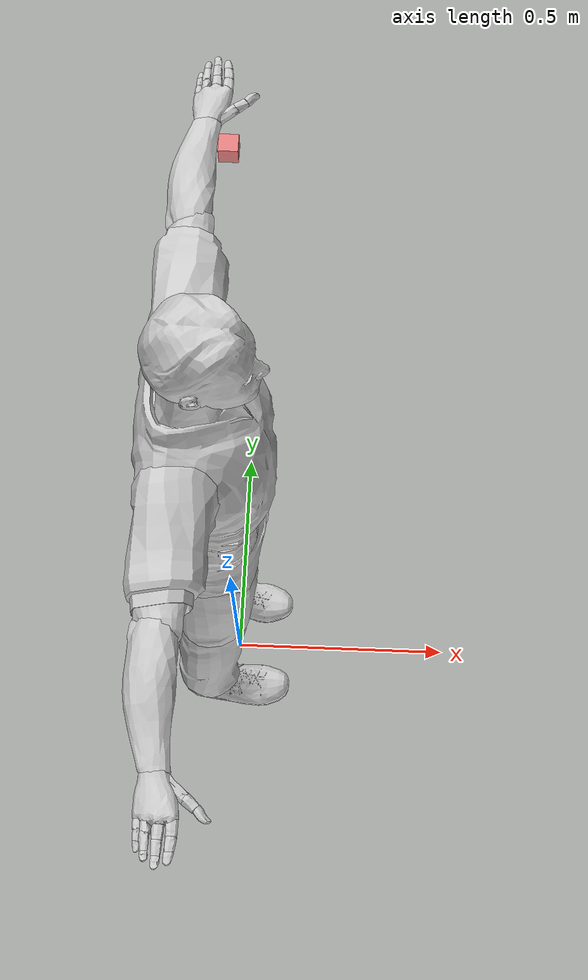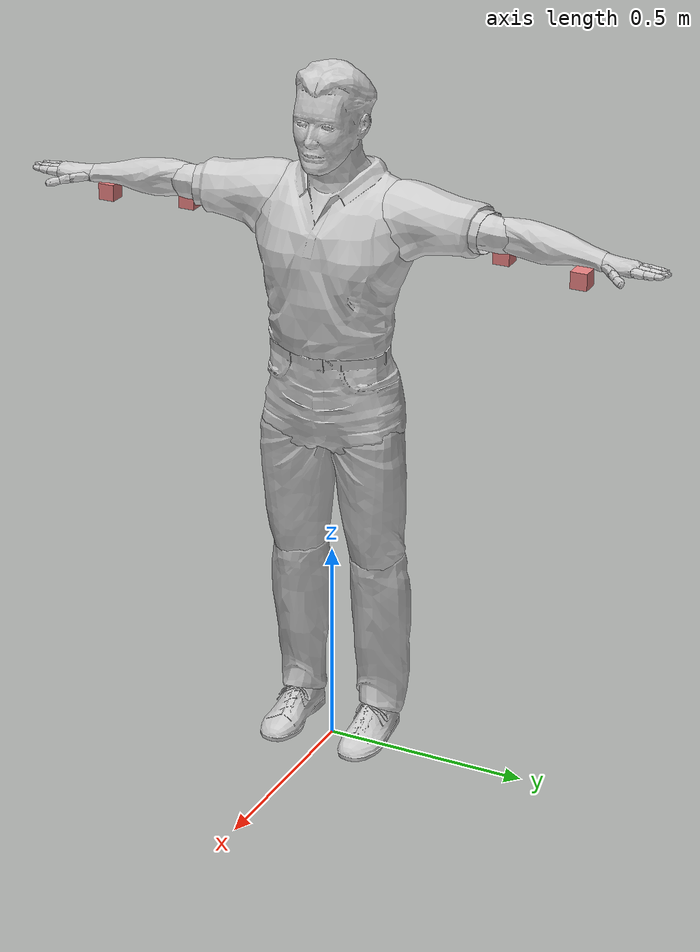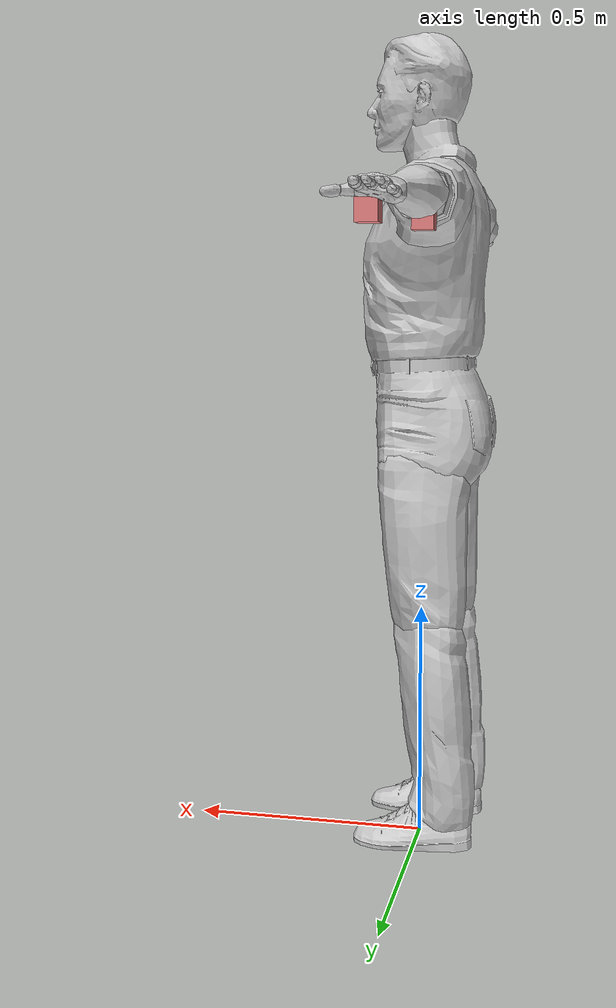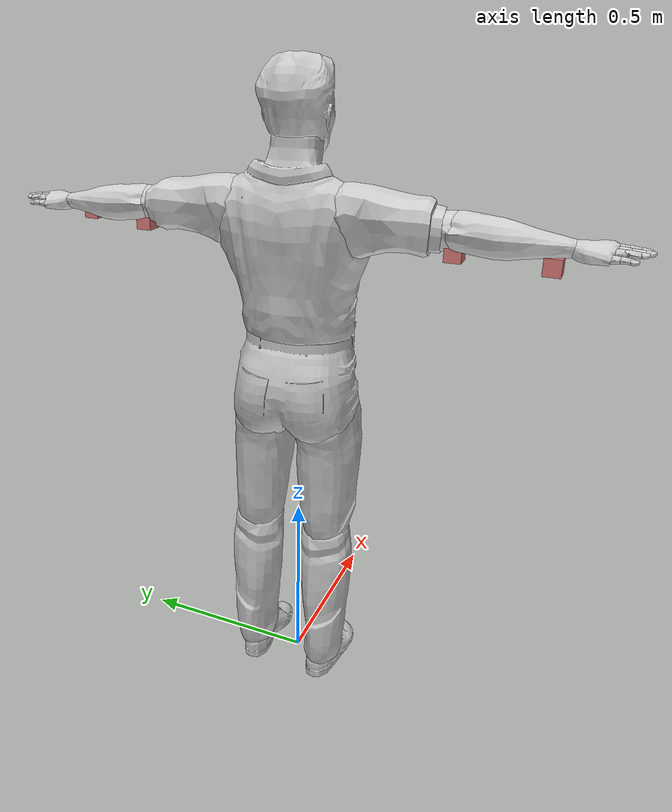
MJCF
<mujoco model="HUMAN">
    <compiler angle="radian" meshdir="../meshes/stl/" />
    <size njmax="500" nconmax="100" />
    <option timestep="0.001" iterations="50"  tolerance="1e-10" solver="Newton" jacobian="dense" cone="pyramidal" />

    <default>
        <default class="collision">
            <geom condim="3" material="matgeom" type="mesh" group="0" />
        </default>
        <default class="visual">
            <geom condim="3" material="matgeom" type="mesh" group="1" conaffinity="0" contype="0" />
        </default>
    </default>

    <asset>
        <texture type='skybox' builtin='gradient' width='128' height='128' rgb1='0.4 0.6 0.8' rgb2='0 0 0'/>
        <mesh name="HipsLinkFull" file="HipsLinkFull.stl" />
        <mesh name="TorsoLinkFull" file="TorsoLinkFull.stl" />
        <mesh name="HeadLinkFull" file="HeadLinkFull.stl" />
        <mesh name="LArmLinkFull" file="LArmLinkFull.stl" />
        <mesh name="LElbowLink" file="LElbowLink.stl" />
        <mesh name="LForearmLink" file="LForearmLink.stl" />
        <mesh name="LWrist" file="LWrist.stl" />
        <mesh name="RArmLinkFull" file="RArmLinkFull.stl" />
        <mesh name="RElbowLink" file="RElbowLink.stl" />
        <mesh name="RForearmLink" file="RForearmLink.stl" />
        <mesh name="RWrist" file="RWrist.stl" />
        <mesh name="LLegLink" file="LLegLink.stl" />
        <mesh name="LShinLink" file="LShinLink.stl" />
        <mesh name="LAnkleLinkFull" file="LAnkleLinkFull.stl" />
        <mesh name="RLegLink" file="RLegLink.stl" />
        <mesh name="RShinLink" file="RShinLink.stl" />
        <mesh name="RAnkleLinkFull" file="RAnkleLinkFull.stl" />
        <mesh name="LThumb0thPhalange" file="LThumb0thPhalange.stl" />
        <mesh name="LThumb1stPhalange" file="LThumb1stPhalange.stl" />
        <mesh name="LThumb2ndPhalange" file="LThumb2ndPhalange.stl" />
        <mesh name="LIndex1stPhalange" file="LIndex1stPhalange.stl" />
        <mesh name="LIndex2ndPhalange" file="LIndex2ndPhalange.stl" />
        <mesh name="LIndex3rdPhalange" file="LIndex3rdPhalange.stl" />
        <mesh name="LMiddle1stPhalange" file="LMiddle1stPhalange.stl" />
        <mesh name="LMiddle2ndPhalange" file="LMiddle2ndPhalange.stl" />
        <mesh name="LMiddle3rdPhalange" file="LMiddle3rdPhalange.stl" />
        <mesh name="LRing1stPhalange" file="LRing1stPhalange.stl" />
        <mesh name="LRing2ndPhalange" file="LRing2ndPhalange.stl" />
        <mesh name="LRing3rdPhalange" file="LRing3rdPhalange.stl" />
        <mesh name="LBaby1stPhalange" file="LBaby1stPhalange.stl" />
        <mesh name="LBaby2ndPhalange" file="LBaby2ndPhalange.stl" />
        <mesh name="LBaby3rdPhalange" file="LBaby3rdPhalange.stl" />
        <mesh name="RThumb0thPhalange" file="RThumb0thPhalange.stl" />
        <mesh name="RThumb1stPhalange" file="RThumb1stPhalange.stl" />
        <mesh name="RThumb2ndPhalange" file="RThumb2ndPhalange.stl" />
        <mesh name="RIndex1stPhalange" file="RIndex1stPhalange.stl" />
        <mesh name="RIndex2ndPhalange" file="RIndex2ndPhalange.stl" />
        <mesh name="RIndex3rdPhalange" file="RIndex3rdPhalange.stl" />
        <mesh name="RMiddle1stPhalange" file="RMiddle1stPhalange.stl" />
        <mesh name="RMiddle2ndPhalange" file="RMiddle2ndPhalange.stl" />
        <mesh name="RMiddle3rdPhalange" file="RMiddle3rdPhalange.stl" />
        <mesh name="RRing1stPhalange" file="RRing1stPhalange.stl" />
        <mesh name="RRing2ndPhalange" file="RRing2ndPhalange.stl" />
        <mesh name="RRing3rdPhalange" file="RRing3rdPhalange.stl" />
        <mesh name="RBaby1stPhalange" file="RBaby1stPhalange.stl" />
        <mesh name="RBaby2ndPhalange" file="RBaby2ndPhalange.stl" />
        <mesh name="RBaby3rdPhalange" file="RBaby3rdPhalange.stl" />
        <texture name="texgeom" type="cube" builtin="flat" mark="cross" width="127" height="1278" rgb1="1 1 1" rgb2="1 1 1" markrgb="1 1 1" random="0.01" />
        <material name="matgeom" texture="texgeom" texuniform="true" rgba="0.8 0.8 0.8 1" />
    </asset>

    <contact>
        <exclude body1="base_link" body2="TorsoLink" />
        <exclude body1="base_link" body2="LLegLink" />
        <exclude body1="base_link" body2="RLegLink" />
        <exclude body1="base_link" body2="LForearmLink" />
        <exclude body1="base_link" body2="RForearmLink" />
        <exclude body1="base_link" body2="LHandLink" />
        <exclude body1="base_link" body2="RHandLink" />

        <exclude body1="TorsoLink" body2="HeadLink" />

        <exclude body1="TorsoLink" body2="LArmLink" />
        <exclude body1="TorsoLink" body2="LElbowLink" />
        <exclude body1="TorsoLink" body2="LHandLink" />
        <exclude body1="TorsoLink" body2="LHandThumb0Link" />
        <exclude body1="TorsoLink" body2="LHandThumb1Link" />
        <exclude body1="TorsoLink" body2="LHandThumb2Link" />
        <exclude body1="TorsoLink" body2="LHandIndex1Link" />
        <exclude body1="TorsoLink" body2="LHandIndex2Link" />
        <exclude body1="TorsoLink" body2="LHandIndex3Link" />
        <exclude body1="TorsoLink" body2="LHandMiddle1Link" />
        <exclude body1="TorsoLink" body2="LHandMiddle2Link" />
        <exclude body1="TorsoLink" body2="LHandMiddle3Link" />
        <exclude body1="TorsoLink" body2="LHandRing1Link" />
        <exclude body1="TorsoLink" body2="LHandRing2Link" />
        <exclude body1="TorsoLink" body2="LHandRing3Link" />
        <exclude body1="TorsoLink" body2="LHandBaby1Link" />
        <exclude body1="TorsoLink" body2="LHandBaby2Link" />
        <exclude body1="TorsoLink" body2="LHandBaby3Link" />

        <exclude body1="TorsoLink" body2="RArmLink" />
        <exclude body1="TorsoLink" body2="RElbowLink" />
        <exclude body1="TorsoLink" body2="RHandLink" />
        <exclude body1="TorsoLink" body2="RHandThumb0Link" />
        <exclude body1="TorsoLink" body2="RHandThumb1Link" />
        <exclude body1="TorsoLink" body2="RHandThumb2Link" />
        <exclude body1="TorsoLink" body2="RHandIndex1Link" />
        <exclude body1="TorsoLink" body2="RHandIndex2Link" />
        <exclude body1="TorsoLink" body2="RHandIndex3Link" />
        <exclude body1="TorsoLink" body2="RHandMiddle1Link" />
        <exclude body1="TorsoLink" body2="RHandMiddle2Link" />
        <exclude body1="TorsoLink" body2="RHandMiddle3Link" />
        <exclude body1="TorsoLink" body2="RHandRing1Link" />
        <exclude body1="TorsoLink" body2="RHandRing2Link" />
        <exclude body1="TorsoLink" body2="RHandRing3Link" />
        <exclude body1="TorsoLink" body2="RHandBaby1Link" />
        <exclude body1="TorsoLink" body2="RHandBaby2Link" />
        <exclude body1="TorsoLink" body2="RHandBaby3Link" />

        <exclude body1="LLegLink" body2="LForearmLink" />
        <exclude body1="LLegLink" body2="LHandLink" />
        <exclude body1="LLegLink" body2="LHandThumb0Link" />
        <exclude body1="LLegLink" body2="LHandThumb1Link" />
        <exclude body1="LLegLink" body2="LHandThumb2Link" />
        <exclude body1="LLegLink" body2="LHandIndex1Link" />
        <exclude body1="LLegLink" body2="LHandIndex2Link" />
        <exclude body1="LLegLink" body2="LHandIndex3Link" />
        <exclude body1="LLegLink" body2="LHandMiddle1Link" />
        <exclude body1="LLegLink" body2="LHandMiddle2Link" />
        <exclude body1="LLegLink" body2="LHandMiddle3Link" />
        <exclude body1="LLegLink" body2="LHandRing1Link" />
        <exclude body1="LLegLink" body2="LHandRing2Link" />
        <exclude body1="LLegLink" body2="LHandRing3Link" />
        <exclude body1="LLegLink" body2="LHandBaby1Link" />
        <exclude body1="LLegLink" body2="LHandBaby2Link" />
        <exclude body1="LLegLink" body2="LHandBaby3Link" />

        <exclude body1="RLegLink" body2="RForearmLink" />
        <exclude body1="RLegLink" body2="RHandLink" />
        <exclude body1="RLegLink" body2="RHandThumb0Link" />
        <exclude body1="RLegLink" body2="RHandThumb1Link" />
        <exclude body1="RLegLink" body2="RHandThumb2Link" />
        <exclude body1="RLegLink" body2="RHandIndex1Link" />
        <exclude body1="RLegLink" body2="RHandIndex2Link" />
        <exclude body1="RLegLink" body2="RHandIndex3Link" />
        <exclude body1="RLegLink" body2="RHandMiddle1Link" />
        <exclude body1="RLegLink" body2="RHandMiddle2Link" />
        <exclude body1="RLegLink" body2="RHandMiddle3Link" />
        <exclude body1="RLegLink" body2="RHandRing1Link" />
        <exclude body1="RLegLink" body2="RHandRing2Link" />
        <exclude body1="RLegLink" body2="RHandRing3Link" />
        <exclude body1="RLegLink" body2="RHandBaby1Link" />
        <exclude body1="RLegLink" body2="RHandBaby2Link" />
        <exclude body1="RLegLink" body2="RHandBaby3Link" />

        <exclude body1="LArmLink" body2="LForearmLink" />
        <exclude body1="LForearmLink" body2="LHandLink" />
        <exclude body1="RArmLink" body2="RForearmLink" />
        <exclude body1="RForearmLink" body2="RHandLink" />
        <exclude body1="LShinLink" body2="LAnkleLink" />
        <exclude body1="RShinLink" body2="RAnkleLink" />
    </contact>

    <worldbody>
        <light directional="false" diffuse="0.2 0.2 0.2" specular="0 0 0" pos="0 0 2" dir="0 0 -1" castshadow="false" />

        <!-- ====== mocap body parts ====== -->

        <!-- pelvis (base_link here) -->
        <body name="mocap_Pelvis" mocap="true" pos="0 0 1" >
            <geom type="box" group="1" size="0.02 0.02 0.02" contype="0" conaffinity="0" rgba=".9 .5 .5 1"/>
        </body>

        <!-- torso -->
        <body name="mocap_T8" mocap="true" pos="0 0 1" >
            <geom type="box" group="1" size="0.02 0.02 0.02" contype="0" conaffinity="0" rgba=".9 .5 .5 1"/>
        </body>

        <!-- head -->
        <body name="mocap_Head" mocap="true" pos="-0.025 0 1.46" >
            <geom type="box" group="1" size="0.02 0.02 0.02" contype="0" conaffinity="0" rgba=".9 .5 .5 1"/>
        </body>

        <!-- right shoulder -->
        <body name="mocap_Right Upper Arm" mocap="true" pos="-0.05 -0.15 1.3" >
            <geom type="box" group="1" size="0.02 0.02 0.02" contype="0" conaffinity="0" rgba=".9 .5 .5 1"/>
        </body>

        <!-- right forearm -->
        <body name="mocap_Right Forearm" mocap="true" pos="-0.06 -0.4 1.3" >
            <geom type="box" group="1" size="0.02 0.02 0.02" contype="0" conaffinity="0" rgba=".9 .5 .5 1"/>
        </body>

        <!-- right hand -->
        <body name="mocap_Right Hand" mocap="true" pos="-0.05 -0.61 1.29" >
            <geom type="box" group="1" size="0.02 0.02 0.02" contype="0" conaffinity="0" rgba=".9 .5 .5 1"/>
        </body>

        <!-- left shoulder -->
        <body name="mocap_Left Upper Arm" mocap="true" pos="-0.05 0.15 1.3" >
            <geom type="box" group="1" size="0.02 0.02 0.02" contype="0" conaffinity="0" rgba=".9 .5 .5 1"/>
        </body>

        <!-- left forearm -->
        <body name="mocap_Left Forearm" mocap="true" pos="-0.06 0.4 1.3" >
            <geom type="box" group="1" size="0.02 0.02 0.02" contype="0" conaffinity="0" rgba=".9 .5 .5 1"/>
        </body>

        <!-- left hand -->
        <body name="mocap_Left Hand" mocap="true" pos="-0.0 0.61 1.3" >
            <geom type="box" group="1" size="0.02 0.02 0.02" contype="0" conaffinity="0" rgba=".9 .5 .5 1"/>
        </body>

        <!-- right upper leg -->
        <body name="mocap_Right Upper Leg" mocap="true" pos="0 -0.1 0.9" >
            <geom type="box" group="1" size="0.02 0.02 0.02" contype="0" conaffinity="0" rgba=".9 .5 .5 1"/>
        </body>

        <!-- right lower leg -->
        <body name="mocap_Right Lower Leg" mocap="true" pos="-0.025 -0.1 0.55" >
            <geom type="box" group="1" size="0.02 0.02 0.02" contype="0" conaffinity="0" rgba=".9 .5 .5 1"/>
        </body>

        <!-- right foot -->
        <body name="mocap_Right Foot" mocap="true" pos="-0.05 -0.1 0.18" >
            <geom type="box" group="1" size="0.02 0.02 0.02" contype="0" conaffinity="0" rgba=".9 .5 .5 1"/>
        </body>

        <!-- left upper leg -->
        <body name="mocap_Left Upper Leg" mocap="true" pos="0 0.1 0.9" >
            <geom type="box" group="1" size="0.02 0.02 0.02" contype="0" conaffinity="0" rgba=".9 .5 .5 1"/>
        </body>

        <!-- left lower leg -->
        <body name="mocap_Left Lower Leg" mocap="true" pos="-0.025 0.1 0.55" >
            <geom type="box" group="1" size="0.02 0.02 0.02" contype="0" conaffinity="0" rgba=".9 .5 .5 1"/>
        </body>

        <!-- left foot -->
        <body name="mocap_Left Foot" mocap="true" pos="-0.05 0.1 0.18" >
            <geom type="box" group="1" size="0.02 0.02 0.02" contype="0" conaffinity="0" rgba=".9 .5 .5 1"/>
        </body>

        <!-- ====== robot (actuated part of model) ====== -->
        <body name="base_link" pos="0 0 1">
            <freejoint name="root" />
            <geom class="visual" type="mesh" contype="0" conaffinity="0" group="1" mesh="HipsLinkFull" />
            <geom class="collision" type="mesh" mesh="HipsLinkFull" />
            <!-- site for root imu sensor -->
	        <site name="Gyro" size="0.01" pos=" 0 0 0" />
            <body name="hip2torso_1" pos="0 0 0">
                <inertial pos="0 0 0" mass="0.2" diaginertia="3.2e-06 3.2e-06 3.2e-06" />
                <joint name="Torso_0" pos="0 0 0" axis="1 0 0" limited="true" range="-0.65 0.65" armature="0.08943" />
                <body name="hip2torso_2" pos="0 0 0">
                    <inertial pos="0 0 0" mass="0.2" diaginertia="3.2e-06 3.2e-06 3.2e-06" />
                    <joint name="Torso_1" pos="0 0 0" axis="0 1 0" limited="true" range="-0.55 2.9" armature="0.2423" />
                    <body name="TorsoLink" pos="0 0 0">
                        <inertial pos="-0.1334 0 0.4701" quat="0.270598 0.653281 0.270598 0.653281" mass="10.779" diaginertia="0.0903 0.0903 0.0903" />
                        <joint name="Torso_2" pos="0 0 0" axis="0 0 1" limited="true" range="-0.7 0.7" armature="2.5423" />
                        <geom class="visual" type="mesh" group="1" mesh="TorsoLinkFull" condim="6"/>
                        <geom class="collision" type="mesh" mesh="TorsoLinkFull" condim="6"/>
                        <body name="torso2head_1" pos="-0.025 0 0.525">
                            <inertial pos="0 0 0" mass="0.05" diaginertia="2e-06 2e-06 2e-06" />
                            <joint name="Head_0" pos="0 0 0" axis="1 0 0" limited="true" range="-0.62 0.62" armature="0.5"/>
                            <body name="torso2head_2" pos="0 0 0">
                                <inertial pos="0 0 0" mass="0.05" diaginertia="2e-06 2e-06 2e-06" />
                                <joint name="Head_1" pos="0 0 0" axis="0 1 0" limited="true" range="-0.45 0.45" armature="0.45"/>
                                <body name="HeadLink" pos="0 0 0">
                                    <inertial pos="0.0459 0 0.0433" quat="0.653281 0.270598 -0.270598 0.653281" mass="4.7372" diaginertia="0.0630333 0.0630333 0.0630333" />
                                    <joint name="Head_2" pos="0 0 0" axis="0 0 1" limited="true" range="-1.1 1.1" armature="0.18"/>
                                    <geom class="visual" type="mesh" contype="0" conaffinity="0" group="1" mesh="HeadLinkFull" />
                                    <geom class="collision" type="mesh" mesh="HeadLinkFull" />
                                </body>
                            </body>
                        </body>
                        <body name="torso2lshoulder_1" pos="-0.05 0.15 0.35">
                            <inertial pos="0 0 0" mass="0.2" diaginertia="3.2e-06 3.2e-06 3.2e-06" />
                            <joint name="LArm_0" pos="0 0 0" axis="1 0 0" limited="true" range="-1.42 1.57" armature="0.553"/>
                            <body name="torso2lshoulder_2" pos="0 0 0">
                                <inertial pos="0 0 0" mass="0.2" diaginertia="3.2e-06 3.2e-06 3.2e-06" />
                                <joint name="LArm_1" pos="0 0 0" axis="0 1 0" limited="true" range="-1.2 1.2" armature="0.3201"/>
                                <body name="LArmLink" pos="0 0 0">
                                    <inertial pos="0 0.1328 0" quat="0.653281 0.270598 -0.270598 0.653281" mass="1.96" diaginertia="0.223967 0.223967 0.223967" />
                                    <joint name="LArm_2" pos="0 0 0" axis="0 0 1" limited="true" range="-2.8 0.9" armature="0.1646"/>
                                    <geom class="visual" type="mesh" contype="0" conaffinity="0" group="1" mesh="LArmLinkFull" friction="0.7"/>
                                    <geom class="collision" type="mesh" mesh="LArmLinkFull" friction="0.7"/>
                                    <body name="LElbowLink" pos="0 0.2 0">
                                        <inertial pos="0.000513 0.034528 -0.000934" quat="0.653281 0.270598 -0.270598 0.653281" mass="0.25" diaginertia="2.66667e-05 2.66667e-05 2.66667e-05" />
                                        <geom class="visual" type="mesh" contype="0" conaffinity="0" group="1" mesh="LElbowLink" />
                                        <geom class="collision" type="mesh" mesh="LElbowLink" />
                                        <body name="LForearmLink" pos="-0.01 0.05 0">
                                            <inertial pos="0 0.15114 0" quat="0.653281 0.270598 -0.270598 0.653281" mass="1.18" diaginertia="0.0442 0.0442 0.0442" />
                                            <joint name="LForearm_0" pos="0 0 0" axis="0 0 1" limited="true" range="-2.5 0" armature="0.05088"/>
                                            <body name="elbow2lforearm" pos="0 0 0">
                                                <inertial pos="0 0 0" mass="0.05" diaginertia="2e-06 2e-06 2e-06" />
                                                <joint name="LForearm_1" pos="0 0 0" axis="0 1 0" limited="true" range="-1.5 1" armature="0.05088"/>
                                                <geom class="visual" type="mesh" contype="0" conaffinity="0" group="1" mesh="LForearmLink" />
                                                <geom class="collision" type="mesh" mesh="LForearmLink" />
                                                <body name="forearm2lwrist_1" pos="0.01 0.24 -0.01">
                                                    <inertial pos="0 0 0" mass="0.05" diaginertia="2e-06 2e-06 2e-06" />
                                                    <joint name="LWrist_0" pos="0 0 0" axis="1 0 0" limited="true" range="-1.5 1.5" armature="0.05088"/>
                                                    <body name="LHandLink" pos="0 0 0">
                                                        <inertial pos="0.0139 0.042 -0.0128" quat="0.270598 0.653281 0.270598 0.653281" mass="0.272" diaginertia="6.37267e-05 6.37267e-05 6.37267e-05" />
                                                        <joint name="LWrist_1" pos="0 0 0" axis="0 0 1" limited="true" range="-0.35 0.35" armature="0.05088"/>
                                                        <geom class="visual" type="mesh" contype="0" conaffinity="0" group="1" mesh="LWrist" />
                                                        <geom class="collision" type="mesh" mesh="LWrist" />
                                                        <body name="l_gripper" pos="0.025 0 0">
                                                            <inertial pos="0 0 0" mass="2e-06" diaginertia="1.1e-09 1.1e-09 1.1e-09" />
                                                            <joint name="LHand" pos="0 0 0" axis="1 0 0" limited="true" range="0 1" armature="0.05088"/>
                                                        </body>
                                                        <body name="LHandThumb0Link" pos="0.025 0.016 -0.016" quat="0.91017 0.232405 0.0848343 0.332238">
                                                            <inertial pos="0.019337 0.003385 -0.004077" quat="0.653281 0.270598 -0.270598 0.653281" mass="0.0182" diaginertia="3.33333e-06 3.33333e-06 3.33333e-06" />
                                                            <geom class="visual" type="mesh" contype="0" conaffinity="0" group="1" mesh="LThumb0thPhalange" />
                                                            <body name="LHandThumb1Link" pos="0.045 0 0">
                                                                <inertial pos="0.01028 0.001082 0.002081" quat="0.653281 0.270598 -0.270598 0.653281" mass="0.0182" diaginertia="1.33333e-06 1.33333e-06 1.33333e-06" />
                                                                <geom class="visual" type="mesh" contype="0" conaffinity="0" group="1" mesh="LThumb1stPhalange" />
                                                                <body name="LHandThumb2Link" pos="0.026 0 0">
                                                                    <inertial pos="0.016873 0.000626 -0.001112" quat="0.653281 0.270598 -0.270598 0.653281" mass="0.0182" diaginertia="1.33333e-06 1.33333e-06 1.33333e-06" />
                                                                    <geom class="visual" type="mesh" contype="0" conaffinity="0" group="1" mesh="LThumb2ndPhalange" />
                                                                </body>
                                                            </body>
                                                        </body>
                                                        <body name="LHandIndex1Link" pos="0.0425 0.078 -0.01">
                                                            <inertial pos="-0.001367 0.01696 0.001019" quat="0.653281 0.270598 -0.270598 0.653281" mass="0.0182" diaginertia="1.66667e-06 1.66667e-06 1.66667e-06" />
                                                            <geom class="visual" type="mesh" contype="0" conaffinity="0" group="1" mesh="LIndex1stPhalange" />
                                                            <body name="LHandIndex2Link" pos="0 0.035 0">
                                                                <inertial pos="0.000441 0.009184 0.000856" quat="0.653281 0.270598 -0.270598 0.653281" mass="0.0182" diaginertia="1e-06 1e-06 1e-06" />
                                                                <geom class="visual" type="mesh" contype="0" conaffinity="0" group="1" mesh="LIndex2ndPhalange" />
                                                                <body name="LHandIndex3Link" pos="0 0.022 0">
                                                                    <inertial pos="-0.001129 0.010116 0.001347" quat="0.653281 0.270598 -0.270598 0.653281" mass="0.0182" diaginertia="6.66667e-07 6.66667e-07 6.66667e-07" />
                                                                    <geom class="visual" type="mesh" contype="0" conaffinity="0" group="1" mesh="LIndex3rdPhalange" />
                                                                </body>
                                                            </body>
                                                        </body>
                                                        <body name="LHandMiddle1Link" pos="0.02 0.09 -0.01">
                                                            <inertial pos="-0.000126 0.013279 0.000876" quat="0.653281 0.270598 -0.270598 0.653281" mass="0.0182" diaginertia="1.33333e-06 1.33333e-06 1.33333e-06" />
                                                            <geom class="visual" type="mesh" contype="0" conaffinity="0" group="1" mesh="LMiddle1stPhalange" />
                                                            <body name="LHandMiddle2Link" pos="0 0.028 0">
                                                                <inertial pos="-0.000232 0.010285 0.001535" quat="0.653281 0.270598 -0.270598 0.653281" mass="0.0182" diaginertia="1e-06 1e-06 1e-06" />
                                                                <geom class="visual" type="mesh" contype="0" conaffinity="0" group="1" mesh="LMiddle2ndPhalange" />
                                                                <body name="LHandMiddle3Link" pos="0 0.025 0">
                                                                    <inertial pos="-0.000228 0.009327 0.001888" quat="0.653281 0.270598 -0.270598 0.653281" mass="0.0182" diaginertia="6.66667e-07 6.66667e-07 6.66667e-07" />
                                                                    <geom class="visual" type="mesh" contype="0" conaffinity="0" group="1" mesh="LMiddle3rdPhalange" />
                                                                </body>
                                                            </body>
                                                        </body>
                                                        <body name="LHandRing1Link" pos="-0.001 0.085 -0.01">
                                                            <inertial pos="-0.001164 0.011568 -0.002292" quat="0.653281 0.270598 -0.270598 0.653281" mass="0.0182" diaginertia="1.33333e-06 1.33333e-06 1.33333e-06" />
                                                            <geom class="visual" type="mesh" contype="0" conaffinity="0" group="1" mesh="LRing1stPhalange" />
                                                            <body name="LHandRing2Link" pos="0 0.0225 0">
                                                                <inertial pos="-0.000672 0.011883 0.001817" quat="0.653281 0.270598 -0.270598 0.653281" mass="0.0182" diaginertia="1e-06 1e-06 1e-06" />
                                                                <geom class="visual" type="mesh" contype="0" conaffinity="0" group="1" mesh="LRing2ndPhalange" />
                                                                <body name="LHandRing3Link" pos="0 0.028 0">
                                                                    <inertial pos="0.000957 0.007793 0.000943" quat="0.653281 0.270598 -0.270598 0.653281" mass="0.0182" diaginertia="6.66667e-07 6.66667e-07 6.66667e-07" />
                                                                    <geom class="visual" type="mesh" contype="0" conaffinity="0" group="1" mesh="LRing3rdPhalange" />
                                                                </body>
                                                            </body>
                                                        </body>
                                                        <body name="LHandBaby1Link" pos="-0.015 0.079 -0.022">
                                                            <inertial pos="-0.000982 0.009799 0.000912" quat="0.653281 0.270598 -0.270598 0.653281" mass="0.0182" diaginertia="1e-06 1e-06 1e-06" />
                                                            <geom class="visual" type="mesh" contype="0" conaffinity="0" group="1" mesh="LBaby1stPhalange" />
                                                            <body name="LHandBaby2Link" pos="0 0.02 0">
                                                                <inertial pos="-0.000602 0.009315 0.001953" quat="0.653281 0.270598 -0.270598 0.653281" mass="0.0182" diaginertia="6.66667e-07 6.66667e-07 6.66667e-07" />
                                                                <geom class="visual" type="mesh" contype="0" conaffinity="0" group="1" mesh="LBaby2ndPhalange" />
                                                                <body name="LHandBaby3Link" pos="0 0.02 0">
                                                                    <inertial pos="-0.018741 0.030511 0.01986" quat="0.653281 0.270598 -0.270598 0.653281" mass="0.0182" diaginertia="8.33333e-06 8.33333e-06 8.33333e-06" />
                                                                    <geom class="visual" type="mesh" contype="0" conaffinity="0" group="1" mesh="LBaby3rdPhalange" />
                                                                </body>
                                                            </body>
                                                        </body>
                                                    </body>
                                                </body>
                                            </body>
                                        </body>
                                    </body>
                                </body>
                            </body>
                        </body>
                        <body name="torso2rshoulder_1" pos="-0.05 -0.15 0.35">
                            <inertial pos="0 0 0" mass="0.2" diaginertia="3.2e-06 3.2e-06 3.2e-06" />
                            <joint name="RArm_0" pos="0 0 0" axis="1 0 0" limited="true" range="-1.42 1.57" armature="0.553"/>
                            <body name="torso2rshoulder_2" pos="0 0 0">
                                <inertial pos="0 0 0" mass="0.2" diaginertia="3.2e-06 3.2e-06 3.2e-06" />
                                <joint name="RArm_1" pos="0 0 0" axis="0 1 0" limited="true" range="-1.2 1.2" armature="0.3201"/>
                                <body name="RArmLink" pos="0 0 0">
                                    <inertial pos="0 -0.1328 0" quat="0.653281 0.270598 -0.270598 0.653281" mass="1.96" diaginertia="0.223967 0.223967 0.223967" />
                                    <joint name="RArm_2" pos="0 0 0" axis="0 0 1" limited="true" range="-0.9 2.8" armature="0.1646"/>
                                    <geom class="visual" type="mesh" contype="0" conaffinity="0" group="1" mesh="RArmLinkFull" friction="0.7"/>
                                    <geom class="collision" type="mesh" mesh="RArmLinkFull" friction="0.7"/>
                                    <body name="RElbowLink" pos="0 -0.2 0">
                                        <inertial pos="0.000513 -0.034528 -0.000934" quat="0.653281 0.270598 -0.270598 0.653281" mass="0.25" diaginertia="2.66667e-05 2.66667e-05 2.66667e-05" />
                                        <geom class="visual" type="mesh" contype="0" conaffinity="0" group="1" mesh="RElbowLink" />
                                        <geom class="collision" type="mesh" mesh="RElbowLink" />
                                        <body name="RForearmLink" pos="-0.01 -0.05 0">
                                            <inertial pos="0 -0.15114 0" quat="0.653281 0.270598 -0.270598 0.653281" mass="1.18" diaginertia="0.0442 0.0442 0.0442" />
                                            <joint name="RForearm_0" pos="0 0 0" axis="0 0 1" limited="true" range="0 2.5" armature="0.05088"/>
                                            <body name="elbow2rforearm" pos="0 0 0">
                                                <inertial pos="0 0 0" mass="0.05" diaginertia="2e-06 2e-06 2e-06" />
                                                <joint name="RForearm_1" pos="0 0 0" axis="0 1 0" limited="true" range="-1.5 1" armature="0.05088"/>
                                                <geom class="visual" type="mesh" contype="0" conaffinity="0" group="1" mesh="RForearmLink" />
                                                <geom class="collision" type="mesh" mesh="RForearmLink" />
                                                <body name="forearm2rwrist_1" pos="0.01 -0.24 -0.01">
                                                    <inertial pos="0 0 0" mass="0.05" diaginertia="2e-06 2e-06 2e-06" />
                                                    <joint name="RWrist_0" pos="0 0 0" axis="1 0 0" limited="true" range="-1.5 1.5" armature="0.05088"/>
                                                    <body name="RHandLink" pos="0 0 0">
                                                        <inertial pos="0.0139 -0.042 -0.0128" quat="0.270598 0.653281 0.270598 0.653281" mass="0.272" diaginertia="6.37267e-05 6.37267e-05 6.37267e-05" />
                                                        <joint name="RWrist_1" pos="0 0 0" axis="0 0 1" limited="true" range="-0.35 0.35" armature="0.05088"/>
                                                        <geom class="visual" type="mesh" contype="0" conaffinity="0" group="1" mesh="RWrist" />
                                                        <geom class="collision" type="mesh" mesh="RWrist" />
                                                        <body name="r_gripper" pos="0.025 0 0">
                                                            <inertial pos="0 0 0" mass="2e-06" diaginertia="1.1e-09 1.1e-09 1.1e-09" />
                                                            <joint name="RHand" pos="0 0 0" axis="1 0 0" limited="true" range="0 1" armature="0.05088"/>
                                                        </body>
                                                        <body name="RHandThumb0Link" pos="0.025 -0.016 -0.016" quat="0.91017 -0.232405 0.0848343 -0.332238">
                                                            <inertial pos="0.019337 -0.003385 -0.004077" quat="0.653281 0.270598 -0.270598 0.653281" mass="0.0182" diaginertia="3.33333e-06 3.33333e-06 3.33333e-06" />
                                                            <geom class="visual" type="mesh" contype="0" conaffinity="0" group="1" mesh="RThumb0thPhalange" />
                                                            <body name="RHandThumb1Link" pos="0.045 0 0">
                                                                <inertial pos="0.01028 -0.001082 0.002081" quat="0.653281 0.270598 -0.270598 0.653281" mass="0.0182" diaginertia="1.33333e-06 1.33333e-06 1.33333e-06" />
                                                                <geom class="visual" type="mesh" contype="0" conaffinity="0" group="1" mesh="RThumb1stPhalange" />
                                                                <body name="RHandThumb2Link" pos="0.026 0 0">
                                                                    <inertial pos="0.016873 -0.000626 -0.001112" quat="0.653281 0.270598 -0.270598 0.653281" mass="0.0182" diaginertia="1.33333e-06 1.33333e-06 1.33333e-06" />
                                                                    <geom class="visual" type="mesh" contype="0" conaffinity="0" group="1" mesh="RThumb2ndPhalange" />
                                                                </body>
                                                            </body>
                                                        </body>
                                                        <body name="RHandIndex1Link" pos="0.0425 -0.078 -0.01">
                                                            <inertial pos="-0.001367 -0.01696 0.001019" quat="0.653281 0.270598 -0.270598 0.653281" mass="0.0182" diaginertia="1.66667e-06 1.66667e-06 1.66667e-06" />
                                                            <geom class="visual" type="mesh" contype="0" conaffinity="0" group="1" mesh="RIndex1stPhalange" />
                                                            <body name="RHandIndex2Link" pos="0 -0.035 0">
                                                                <inertial pos="0.000441 -0.009184 0.000856" quat="0.653281 0.270598 -0.270598 0.653281" mass="0.0182" diaginertia="1e-06 1e-06 1e-06" />
                                                                <geom class="visual" type="mesh" contype="0" conaffinity="0" group="1" mesh="RIndex2ndPhalange" />
                                                                <body name="RHandIndex3Link" pos="0 -0.022 0">
                                                                    <inertial pos="-0.001129 -0.010116 0.001347" quat="0.653281 0.270598 -0.270598 0.653281" mass="0.0182" diaginertia="6.66667e-07 6.66667e-07 6.66667e-07" />
                                                                    <geom class="visual" type="mesh" contype="0" conaffinity="0" group="1" mesh="RIndex3rdPhalange" />
                                                                </body>
                                                            </body>
                                                        </body>
                                                        <body name="RHandMiddle1Link" pos="0.02 -0.09 -0.01">
                                                            <inertial pos="-0.000126 -0.013279 0.000876" quat="0.653281 0.270598 -0.270598 0.653281" mass="0.0182" diaginertia="1.33333e-06 1.33333e-06 1.33333e-06" />
                                                            <geom class="visual" type="mesh" contype="0" conaffinity="0" group="1" mesh="RMiddle1stPhalange" />
                                                            <body name="RHandMiddle2Link" pos="0 -0.028 0">
                                                                <inertial pos="-0.000232 -0.010285 0.001535" quat="0.653281 0.270598 -0.270598 0.653281" mass="0.0182" diaginertia="1e-06 1e-06 1e-06" />
                                                                <geom class="visual" type="mesh" contype="0" conaffinity="0" group="1" mesh="RMiddle2ndPhalange" />
                                                                <body name="RHandMiddle3Link" pos="0 -0.025 0">
                                                                    <inertial pos="-0.000228 -0.009327 0.001888" quat="0.653281 0.270598 -0.270598 0.653281" mass="0.0182" diaginertia="6.66667e-07 6.66667e-07 6.66667e-07" />
                                                                    <geom class="visual" type="mesh" contype="0" conaffinity="0" group="1" mesh="RMiddle3rdPhalange" />
                                                                </body>
                                                            </body>
                                                        </body>
                                                        <body name="RHandRing1Link" pos="-0.001 -0.085 -0.01">
                                                            <inertial pos="-0.001164 -0.011568 -0.002292" quat="0.653281 0.270598 -0.270598 0.653281" mass="0.0182" diaginertia="1.33333e-06 1.33333e-06 1.33333e-06" />
                                                            <geom class="visual" type="mesh" contype="0" conaffinity="0" group="1" mesh="RRing1stPhalange" />
                                                            <body name="RHandRing2Link" pos="0 -0.0225 0">
                                                                <inertial pos="-0.000672 -0.011883 0.001817" quat="0.653281 0.270598 -0.270598 0.653281" mass="0.0182" diaginertia="1e-06 1e-06 1e-06" />
                                                                <geom class="visual" type="mesh" contype="0" conaffinity="0" group="1" mesh="RRing2ndPhalange" />
                                                                <body name="RHandRing3Link" pos="0 -0.028 0">
                                                                    <inertial pos="0.000957 -0.007793 0.000943" quat="0.653281 0.270598 -0.270598 0.653281" mass="0.0182" diaginertia="6.66667e-07 6.66667e-07 6.66667e-07" />
                                                                    <geom class="visual" type="mesh" contype="0" conaffinity="0" group="1" mesh="RRing3rdPhalange" />
                                                                </body>
                                                            </body>
                                                        </body>
                                                        <body name="RHandBaby1Link" pos="-0.015 -0.079 -0.022">
                                                            <inertial pos="-0.000982 -0.009799 0.000912" quat="0.653281 0.270598 -0.270598 0.653281" mass="0.0182" diaginertia="1e-06 1e-06 1e-06" />
                                                            <geom class="visual" type="mesh" contype="0" conaffinity="0" group="1" mesh="RBaby1stPhalange" />
                                                            <body name="RHandBaby2Link" pos="0 -0.02 0">
                                                                <inertial pos="-0.000602 -0.009315 0.001953" quat="0.653281 0.270598 -0.270598 0.653281" mass="0.0182" diaginertia="6.66667e-07 6.66667e-07 6.66667e-07" />
                                                                <geom class="visual" type="mesh" contype="0" conaffinity="0" group="1" mesh="RBaby2ndPhalange" />
                                                                <body name="RHandBaby3Link" pos="0 -0.02 0">
                                                                    <inertial pos="-0.018741 -0.030511 0.01986" quat="0.653281 0.270598 -0.270598 0.653281" mass="0.0182" diaginertia="8.33333e-06 8.33333e-06 8.33333e-06" />
                                                                    <geom class="visual" type="mesh" contype="0" conaffinity="0" group="1" mesh="RBaby3rdPhalange" />
                                                                </body>
                                                            </body>
                                                        </body>
                                                    </body>
                                                </body>
                                            </body>
                                        </body>
                                    </body>
                                </body>
                            </body>
                        </body>
                    </body>
                </body>
            </body>
            <body name="torso2lleg_1" pos="0 0.1 -0.15" >
                <inertial pos="0 0 0" mass="0.2" diaginertia="3.2e-06 3.2e-06 3.2e-06" />
                <joint name="LLeg_0" pos="0 0 0" axis="1 0 0" limited="true" range="-0.52 0.87" armature="0.54741"/>
                <body name="torso2lleg_2" pos="0 0 0">
                    <inertial pos="0 0 0" mass="0.2" diaginertia="3.2e-06 3.2e-06 3.2e-06" />
                    <joint name="LLeg_1" pos="0 0 0" axis="0 1 0" limited="true" range="-2.3 0.52" armature="0.5423"/>
                    <body name="LLegLink" pos="0 0 0">
                        <inertial pos="-0.0185 -0.0071 -0.178" quat="0.653281 0.270598 -0.270598 0.653281" mass="6.51" diaginertia="0.0421333 0.0421333 0.0421333" />
                        <joint name="LLeg_2" pos="0 0 0" axis="0 0 1" limited="true" range="-0.8 0.8" armature="1.28943"/>
                        <geom class="visual" type="mesh" contype="0" conaffinity="0" group="1" mesh="LLegLink" />
                        <geom class="collision" type="mesh" mesh="LLegLink" />
                        <body name="LShinLink" pos="-0.025 0 -0.35">
                            <inertial pos="-0.0131 0.0025 0.0346" quat="0.653281 0.270598 -0.270598 0.653281" mass="3.095" diaginertia="0.0210667 0.0210667 0.0210667" />
                            <joint name="LShin_0" pos="0 0 0" axis="0 1 0" limited="true" range="0 2.6" armature="0.03988"/>
                            <geom class="visual" type="mesh" contype="0" conaffinity="0" group="1" mesh="LShinLink" />
                            <geom class="collision" type="mesh" mesh="LShinLink" />
                            <body name="shin2lankle_1" pos="-0.025 0 -0.375">
                                <inertial pos="0 0 0" mass="0.2" diaginertia="3.2e-06 3.2e-06 3.2e-06" />
                                <joint name="LAnkle_0" pos="0 0 0" axis="0 1 0" limited="true" range="-0.78 1.3" armature="0.03226"/>
                                <body name="LAnkleLink" pos="0 0 0">
                                    <inertial pos="0.0508 0.0067 -0.0646" quat="0.653281 0.270598 -0.270598 0.653281" mass="10.99" diaginertia="0.00196667 0.00196667 0.00196667" />
                                    <joint name="LAnkle_1" pos="0 0 0" axis="1 0 0" limited="true" range="-0.5 0.5" armature="0.04837"/>
                                    <geom class="visual" type="mesh" group="1" mesh="LAnkleLinkFull" condim="6"/>
                                    <geom class="collision" type="mesh" mesh="LAnkleLinkFull" />
                                </body>
                            </body>
                        </body>
                    </body>
                </body>
            </body>
            <body name="torso2rleg_1" pos="0 -0.1 -0.15">
                <inertial pos="0 0 0" mass="0.2" diaginertia="3.2e-06 3.2e-06 3.2e-06" />
                <joint name="RLeg_0" pos="0 0 0" axis="1 0 0" limited="true" range="-0.87 0.52" armature="0.54741"/>
                <body name="torso2rleg_2" pos="0 0 0">
                    <inertial pos="0 0 0" mass="0.2" diaginertia="3.2e-06 3.2e-06 3.2e-06" />
                    <joint name="RLeg_1" pos="0 0 0" axis="0 1 0" limited="true" range="-2.3 0.52" armature="0.5423"/>
                    <body name="RLegLink" pos="0 0 0">
                        <inertial pos="-0.0185 -0.0071 -0.178" quat="0.653281 0.270598 -0.270598 0.653281" mass="6.51" diaginertia="0.0421333 0.0421333 0.0421333" />
                        <joint name="RLeg_2" pos="0 0 0" axis="0 0 1" limited="true" range="-0.8 0.8" armature="1.28943" />
                        <geom class="visual" type="mesh" contype="0" conaffinity="0" group="1" mesh="RLegLink" />
                        <geom class="collision" type="mesh" mesh="RLegLink" />
                        <body name="RShinLink" pos="-0.025 0 -0.35">
                            <inertial pos="-0.0131 0.0025 0.0346" quat="0.653281 0.270598 -0.270598 0.653281" mass="3.095" diaginertia="0.0210667 0.0210667 0.0210667" />
                            <joint name="RShin_0" pos="0 0 0" axis="0 1 0" limited="true" range="0 2.6" armature="0.03988"/>
                            <geom class="visual" type="mesh" contype="0" conaffinity="0" group="1" mesh="RShinLink" />
                            <geom class="collision" type="mesh" mesh="RShinLink" />
                            <body name="shin2rankle_1" pos="-0.025 0 -0.375">
                                <inertial pos="0 0 0" mass="0.2" diaginertia="3.2e-06 3.2e-06 3.2e-06" />
                                <joint name="RAnkle_0" pos="0 0 0" axis="0 1 0" limited="true" range="-0.78 1.3" armature="0.03226"/>
                                <body name="RAnkleLink" pos="0 0 0">
                                    <inertial pos="0.0508 -0.0067 -0.0646" quat="0.653281 0.270598 -0.270598 0.653281" mass="10.99" diaginertia="0.00196667 0.00196667 0.00196667" />
                                    <joint name="RAnkle_1" pos="0 0 0" axis="1 0 0" limited="true" range="-0.5 0.5" armature="0.04837"/>
                                    <geom class="visual" type="mesh" group="1" mesh="RAnkleLinkFull" condim="6"/>
                                    <geom class="collision" type="mesh" mesh="RAnkleLinkFull" />
                                </body>
                            </body>
                        </body>
                    </body>
                </body>
            </body>
        </body>
    </worldbody>

    <actuator>
        <!-- right leg -->
        <motor name="RLeg_0_motor" joint="RLeg_0" />
        <motor name="RLeg_1_motor" joint="RLeg_1" />
        <motor name="RLeg_2_motor" joint="RLeg_2" />
        <motor name="RShin_0_motor" joint="RShin_0" />
        <motor name="RAnkle_0_motor" joint="RAnkle_0" />
        <motor name="RAnkle_1_motor" joint="RAnkle_1" />
        <!-- left leg -->
        <motor name="LLeg_0_motor" joint="LLeg_0" />
        <motor name="LLeg_1_motor" joint="LLeg_1" />
        <motor name="LLeg_2_motor" joint="LLeg_2" />
        <motor name="LShin_0_motor" joint="LShin_0" />
        <motor name="LAnkle_0_motor" joint="LAnkle_0" />
        <motor name="LAnkle_1_motor" joint="LAnkle_1" />
        <!-- chest-->
        <motor name="Torso_0_motor" joint="Torso_0" />
        <motor name="Torso_1_motor" joint="Torso_1" />
        <motor name="Torso_2_motor" joint="Torso_2" />
        <!-- head -->
        <motor name="Head_0_motor" joint="Head_0" />
        <motor name="Head_1_motor" joint="Head_1" />
        <motor name="Head_2_motor" joint="Head_2" />
        <!-- right arm -->
        <motor name="RArm_0_motor" joint="RArm_0" />
        <motor name="RArm_1_motor" joint="RArm_1" />
        <motor name="RArm_2_motor" joint="RArm_2" />
        <motor name="RForearm_0_motor" joint="RForearm_0" />
        <motor name="RForearm_1_motor" joint="RForearm_1" />
        <motor name="RWrist_0_motor" joint="RWrist_0" />
        <motor name="RWrist_1_motor" joint="RWrist_1" />
        <motor name="RHand_motor" joint="RHand" />
        <!-- left arm -->
        <motor name="LArm_0_motor" joint="LArm_0" />
        <motor name="LArm_1_motor" joint="LArm_1" />
        <motor name="LArm_2_motor" joint="LArm_2" />
        <motor name="LForearm_0_motor" joint="LForearm_0" />
        <motor name="LForearm_1_motor" joint="LForearm_1" />
        <motor name="LWrist_0_motor" joint="LWrist_0" />
        <motor name="LWrist_1_motor" joint="LWrist_1" />
        <motor name="LHand_motor" joint="LHand" />
    </actuator>

    <!-- equality contraint between the mocap bodies and the human model bodies -->
    <equality>
        <weld body1="mocap_Pelvis" body2="base_link" solref="0.01 1" solimp=".9 .9 0.01"/>
        <weld body1="mocap_T8" body2="TorsoLink" solref="0.01 1" solimp=".9 .9 0.01"/>
        <weld body1="mocap_Head" body2="HeadLink" solref="0.01 1" solimp=".9 .9 0.01"/>
        <weld body1="mocap_Right Upper Arm" body2="torso2rshoulder_1" solref="0.01 1" solimp=".9 .9 0.01"/>
        <weld body1="mocap_Right Forearm" body2="RForearmLink" solref="0.01 1" solimp=".9 .9 0.01"/>
        <weld body1="mocap_Right Hand" body2="RHandLink" solref="0.01 1" solimp=".9 .9 0.01"/>
        <weld body1="mocap_Left Upper Arm" body2="torso2lshoulder_1" solref="0.01 1" solimp=".9 .9 0.01"/>
        <weld body1="mocap_Left Forearm" body2="LForearmLink" solref="0.01 1" solimp=".9 .9 0.01"/>
        <weld body1="mocap_Left Hand" body2="LHandLink" solref="0.01 1" solimp=".9 .9 0.01"/>
        <weld body1="mocap_Right Upper Leg" body2="RLegLink" solref="0.01 1" solimp=".9 .9 0.01"/>
        <weld body1="mocap_Right Lower Leg" body2="RShinLink" solref="0.01 1" solimp=".9 .9 0.01"/>
        <weld body1="mocap_Right Foot" body2="RAnkleLink" solref="0.01 1" solimp=".9 .9 0.01"/>
        <weld body1="mocap_Left Upper Leg" body2="LLegLink" solref="0.01 1" solimp=".9 .9 0.01"/>
        <weld body1="mocap_Left Lower Leg" body2="LShinLink" solref="0.01 1" solimp=".9 .9 0.01"/>
        <weld body1="mocap_Left Foot" body2="LAnkleLink" solref="0.01 1" solimp=".9 .9 0.01"/>

    </equality>

    <sensor>
        <!-- imu -->
        <gyro name="Accelerometer_gyro" site="Gyro" />
        <accelerometer name="Accelerometer_accelerometer" site="Gyro" />
    </sensor>
</mujoco>
